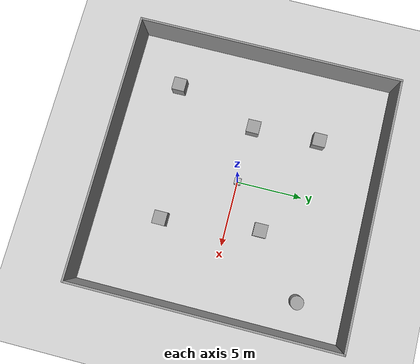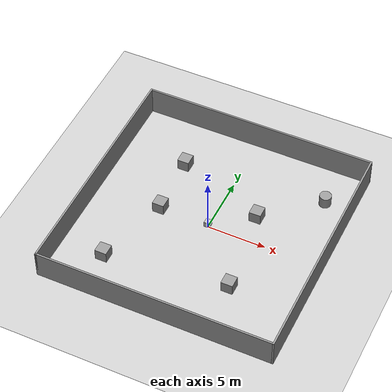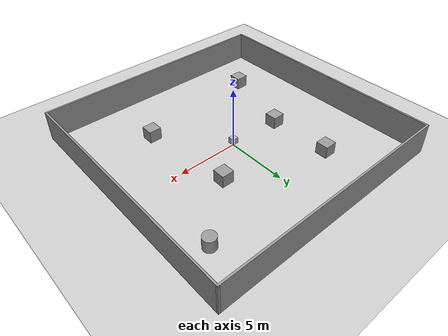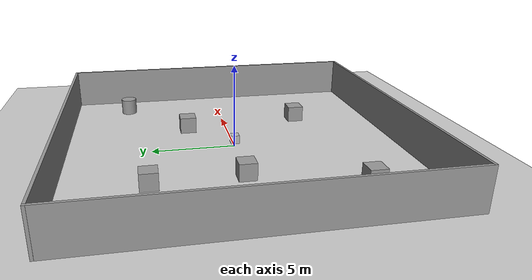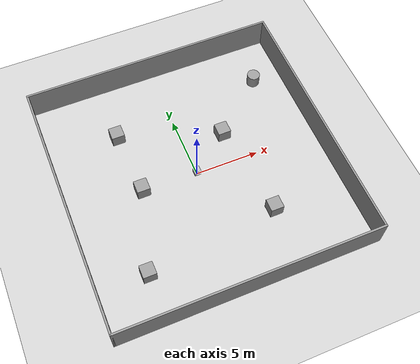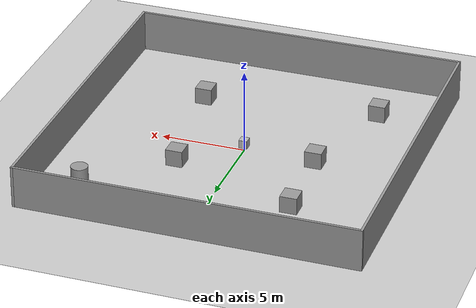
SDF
<sdf version="1.6">
 <world name="default">
  <light name="sun" type="directional">
   <pose>0 0 10 0 -0 0</pose>
   <diffuse>0.8 0.8 0.8 1</diffuse>
   <specular>0.1 0.1 0.1 1</specular>
   <attenuation>
    <range>1000</range>
    <constant>0.9</constant>
    <linear>0.01</linear>
    <quadratic>0.001</quadratic>
   </attenuation>
   <direction>-0.5 0.5 -1</direction>
  </light>
  <model name="ground_plane">
   <static>1</static>
   <link name="link">
    <collision name="collision">
     <geometry><plane><normal>0 0 1</normal><size>100 100</size></plane></geometry>
     <surface><friction><ode><mu>100</mu><mu2>50</mu2></ode></friction></surface>
    </collision>
    <visual name="visual">
     <cast_shadows>0</cast_shadows>
     <geometry><plane><normal>0 0 1</normal><size>100 100</size></plane></geometry>
     <material>
      <script><uri>file://media/materials/scripts/gazebo.material</uri><name>Gazebo/Grey</name></script>
     </material>
    </visual>
   </link>
  </model>
  <gravity>0 0 -9.8</gravity>
  <magnetic_field>6e-06 2.3e-05 -4.2e-05</magnetic_field>
  <atmosphere type="adiabatic"/>
  <physics name="default_physics" default="0" type="ode">
   <max_step_size>0.001</max_step_size>
   <real_time_factor>1</real_time_factor>
   <real_time_update_rate>1000</real_time_update_rate>
  </physics>
  <scene><ambient>0.4 0.4 0.4 1</ambient><background>0.7 0.7 0.7 1</background><shadows>1</shadows></scene>
  <spherical_coordinates>
   <surface_model>EARTH_WGS84</surface_model>
   <latitude_deg>0</latitude_deg>
   <longitude_deg>0</longitude_deg>
   <elevation>0</elevation>
   <heading_deg>0</heading_deg>
  </spherical_coordinates>
  <model name="model_simplu">
   <link name="Wall_0">
    <collision name="Wall_0_Collision">
     <geometry><box><size>20.15 0.15 2.5</size></box></geometry>
     <pose>0 0 1.25 0 -0 0</pose>
    </collision>
    <visual name="Wall_0_Visual">
     <pose>0 0 1.25 0 -0 0</pose>
     <geometry><box><size>20.15 0.15 2.5</size></box></geometry>
     <material>
      <script><uri>file://media/materials/scripts/gazebo.material</uri><name>Gazebo/Grey</name></script>
      <ambient>1 1 1 1</ambient>
     </material>
    </visual>
    <pose>-10 0 0 0 0 -1.5708</pose>
   </link>
   <link name="Wall_1">
    <collision name="Wall_1_Collision">
     <geometry><box><size>20.15 0.15 2.5</size></box></geometry>
     <pose>0 0 1.25 0 -0 0</pose>
    </collision>
    <visual name="Wall_1_Visual">
     <pose>0 0 1.25 0 -0 0</pose>
     <geometry><box><size>20.15 0.15 2.5</size></box></geometry>
     <material>
      <script><uri>file://media/materials/scripts/gazebo.material</uri><name>Gazebo/Grey</name></script>
      <ambient>1 1 1 1</ambient>
     </material>
    </visual>
    <pose>0 -10 0 0 -0 0</pose>
   </link>
   <link name="Wall_2">
    <collision name="Wall_2_Collision">
     <geometry><box><size>20.15 0.15 2.5</size></box></geometry>
     <pose>0 0 1.25 0 -0 0</pose>
    </collision>
    <visual name="Wall_2_Visual">
     <pose>0 0 1.25 0 -0 0</pose>
     <geometry><box><size>20.15 0.15 2.5</size></box></geometry>
     <material>
      <script><uri>file://media/materials/scripts/gazebo.material</uri><name>Gazebo/Grey</name></script>
      <ambient>1 1 1 1</ambient>
     </material>
    </visual>
    <pose>10 0 0 0 -0 1.5708</pose>
   </link>
   <link name="Wall_3">
    <collision name="Wall_3_Collision">
     <geometry><box><size>20.15 0.15 2.5</size></box></geometry>
     <pose>0 0 1.25 0 -0 0</pose>
    </collision>
    <visual name="Wall_3_Visual">
     <pose>0 0 1.25 0 -0 0</pose>
     <geometry><box><size>20.15 0.15 2.5</size></box></geometry>
     <material>
      <script><uri>file://media/materials/scripts/gazebo.material</uri><name>Gazebo/Grey</name></script>
      <ambient>1 1 1 1</ambient>
     </material>
    </visual>
    <pose>0 10 0 0 -0 3.14159</pose>
   </link>
   <static>1</static>
  </model>
  <model name="unit_box_0">
   <pose>-4.5491 5.27787 0.499995 -1e-05 0 0</pose>
   <link name="link">
    <inertial>
     <mass>1</mass>
     <inertia>
      <ixx>0.166667</ixx>
      <ixy>0</ixy>
      <ixz>0</ixz>
      <iyy>0.166667</iyy>
      <iyz>0</iyz>
      <izz>0.166667</izz>
     </inertia>
    </inertial>
    <collision name="collision"><geometry><box><size>1 1 1</size></box></geometry></collision>
    <visual name="visual">
     <geometry><box><size>1 1 1</size></box></geometry>
     <material>
      <script><name>Gazebo/Grey</name><uri>file://media/materials/scripts/gazebo.material</uri></script>
     </material>
    </visual>
   </link>
  </model>
  <model name="unit_box_1">
   <pose>4.11111 -4.91771 0.499995 0 1e-05 0</pose>
   <link name="link">
    <inertial>
     <mass>1</mass>
     <inertia>
      <ixx>0.166667</ixx>
      <ixy>0</ixy>
      <ixz>0</ixz>
      <iyy>0.166667</iyy>
      <iyz>0</iyz>
      <izz>0.166667</izz>
     </inertia>
    </inertial>
    <collision name="collision"><geometry><box><size>1 1 1</size></box></geometry></collision>
    <visual name="visual">
     <geometry><box><size>1 1 1</size></box></geometry>
     <material>
      <script><name>Gazebo/Grey</name><uri>file://media/materials/scripts/gazebo.material</uri></script>
     </material>
    </visual>
   </link>
  </model>
  <model name="unit_box_2">
   <pose>-4.33209 0.158155 0.499995 -1e-05 0 0</pose>
   <link name="link">
    <inertial>
     <mass>1</mass>
     <inertia>
      <ixx>0.166667</ixx>
      <ixy>0</ixy>
      <ixz>0</ixz>
      <iyy>0.166667</iyy>
      <iyz>0</iyz>
      <izz>0.166667</izz>
     </inertia>
    </inertial>
    <collision name="collision"><geometry><box><size>1 1 1</size></box></geometry></collision>
    <visual name="visual">
     <geometry><box><size>1 1 1</size></box></geometry>
     <material>
      <script><name>Gazebo/Grey</name><uri>file://media/materials/scripts/gazebo.material</uri></script>
     </material>
    </visual>
   </link>
  </model>
  <model name="unit_box_3">
   <pose>3.18046 2.53537 0.499995 0 1e-05 0</pose>
   <link name="link">
    <inertial>
     <mass>1</mass>
     <inertia>
      <ixx>0.166667</ixx>
      <ixy>0</ixy>
      <ixz>0</ixz>
      <iyy>0.166667</iyy>
      <iyz>0</iyz>
      <izz>0.166667</izz>
     </inertia>
    </inertial>
    <collision name="collision"><geometry><box><size>1 1 1</size></box></geometry></collision>
    <visual name="visual">
     <geometry><box><size>1 1 1</size></box></geometry>
     <material>
      <script><name>Gazebo/Grey</name><uri>file://media/materials/scripts/gazebo.material</uri></script>
     </material>
    </visual>
   </link>
  </model>
  <model name="unit_box_4">
   <pose>-6.20587 -6.21544 0.499995 -1e-05 0 0</pose>
   <link name="link">
    <inertial>
     <mass>1</mass>
     <inertia>
      <ixx>0.166667</ixx>
      <ixy>0</ixy>
      <ixz>0</ixz>
      <iyy>0.166667</iyy>
      <iyz>0</iyz>
      <izz>0.166667</izz>
     </inertia>
    </inertial>
    <collision name="collision"><geometry><box><size>1 1 1</size></box></geometry></collision>
    <visual name="visual">
     <geometry><box><size>1 1 1</size></box></geometry>
     <material>
      <script><name>Gazebo/Grey</name><uri>file://media/materials/scripts/gazebo.material</uri></script>
     </material>
    </visual>
   </link>
  </model>
  <model name="unit_cylinder_0">
   <pose>7.58034 6.3302 0.499997 3e-06 4e-06 -0</pose>
   <link name="link">
    <inertial>
     <mass>1</mass>
     <inertia><ixx>0.145833</ixx><ixy>0</ixy><ixz>0</ixz><iyy>0.145833</iyy><iyz>0</iyz><izz>0.125</izz></inertia>
    </inertial>
    <collision name="collision">
     <geometry><cylinder><radius>0.5</radius><length>1</length></cylinder></geometry>
    </collision>
    <visual name="visual">
     <geometry><cylinder><radius>0.5</radius><length>1</length></cylinder></geometry>
     <material>
      <script><name>Gazebo/Grey</name><uri>file://media/materials/scripts/gazebo.material</uri></script>
     </material>
    </visual>
   </link>
  </model>
  <model name="box">
   <pose>0 0 0.5 0 0 0</pose>
   <link name="link">
    <collision name="collision"><geometry><box><size>0.5 0.5 0.5</size></box></geometry></collision>
    <visual name="visual"><geometry><box><size>0.5 0.5 0.5</size></box></geometry></visual>
   </link>
   <plugin name="push_animate" filename="libhorizontal_move.so"/>
  </model>
  <model name="box2">
   <pose>0 0 0.5 0 0 0</pose>
   <link name="link">
    <collision name="collision"><geometry><box><size>0.5 0.5 0.5</size></box></geometry></collision>
    <visual name="visual"><geometry><box><size>0.5 0.5 0.5</size></box></geometry></visual>
   </link>
   <plugin name="push_animate1" filename="libvertical_move.so"/>
  </model>
  <model name="box3">
   <pose>0 0 0.5 0 0 0</pose>
   <link name="link">
    <collision name="collision"><geometry><box><size>0.5 0.5 0.5</size></box></geometry></collision>
    <visual name="visual"><geometry><box><size>0.5 0.5 0.5</size></box></geometry></visual>
   </link>
   <plugin name="push_animate2" filename="libhorizontal_move2.so"/>
  </model>
 </world>
</sdf>
